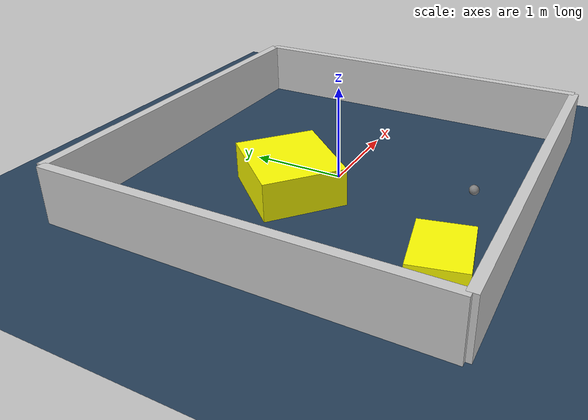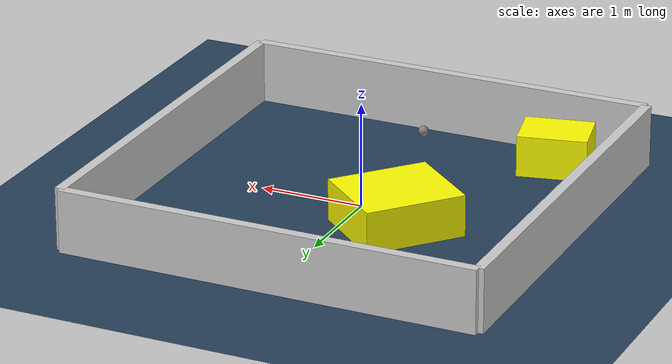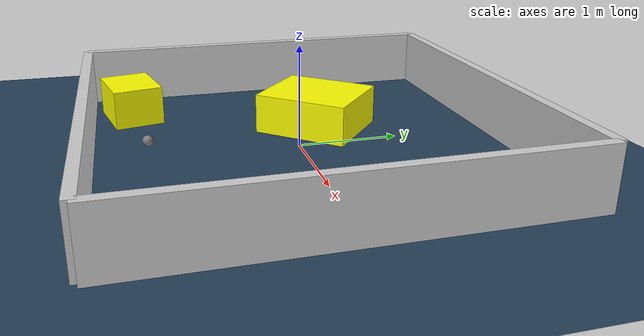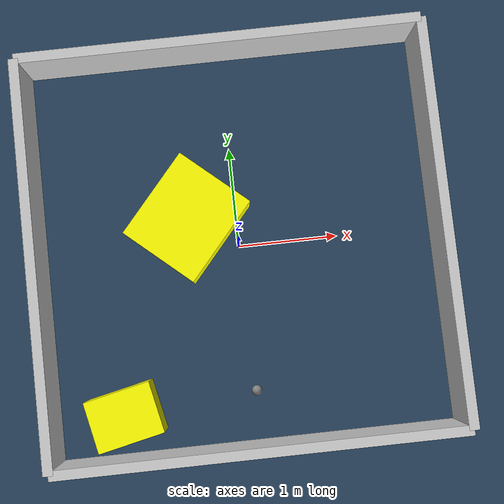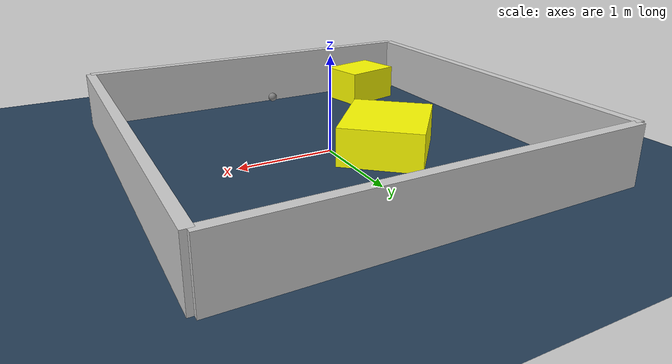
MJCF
<?xml version="1.0" ?>
<mujoco model="generated_environment">
  <option timestep="0.01" integrator="RK4" cone="elliptic"/>
  <default>
    <geom density="1"/>
  </default>
  <asset>
    <texture builtin="gradient" height="3072" rgb1="0.3 0.5 0.7" rgb2="0 0 0" type="skybox" width="512"/>
    <texture builtin="checker" height="300" mark="edge" markrgb="0.8 0.8 0.8" name="groundplane" rgb1="0.2 0.3 0.4" rgb2="0.1 0.2 0.3" type="2d" width="300"/>
    <material name="groundplane" reflectance="0.2" texrepeat="5 5" texture="groundplane" texuniform="true"/>
    <material name="robot" rgba="0.0 1.0 0.0 1"/>
  </asset>
  <worldbody>
    <light dir="0 0 -1" directional="true" pos="0 0 1.5"/>
    <geom condim="4" friction="1.0 0.005 0.001" material="groundplane" name="floor" size="0 0 0.05" type="plane"/>
    <body name="walls">
      <geom name="wall_1" condim="4" pos="-2.0 0.0 0.3" rgba="0.800000011920929 0.800000011920929 0.800000011920929 1.0" size="0.05 2.0 0.3" type="box"/>
      <geom name="wall_2" condim="4" pos="2.0 0.0 0.3" rgba="0.800000011920929 0.800000011920929 0.800000011920929 1.0" size="0.05 2.0 0.3" type="box"/>
      <geom name="wall_3" condim="4" pos="0.0 -2.0 0.3" rgba="0.800000011920929 0.800000011920929 0.800000011920929 1.0" size="2.0 0.05 0.3" type="box"/>
      <geom name="wall_4" condim="4" pos="0.0 2.0 0.3" rgba="0.800000011920929 0.800000011920929 0.800000011920929 1.0" size="2.0 0.05 0.3" type="box"/>
    </body>
    <body name="robot">
      <joint name="joint_x" type="slide" pos="0 0 0" axis="1 0 0"/>
      <joint name="joint_y" type="slide" pos="0 0 0" axis="0 1 0"/>
      <geom name="robot" type="sphere" pos="0.024304909301249955 -1.449417000995529 0.2" size="0.05" mass="5." friction="1.0 0.005 0.0001" condim="4"/>
      <site name="sensor_ball"/>
    </body>
    <body name="obstacle_1_movable">
      <geom name="obstacle_1_movable" condim="4" pos="-0.48522580498487944 0.30612621435363696 0.2" euler="0 0 49.16726559971454" friction="1.0 0.005 0.001" rgba="1 1 0 1" size="0.4846890568470311 0.4221555716494876 0.2" type="box" mass="0.1"/>
      <joint type="free"/>
    </body>
    <body name="obstacle_2_movable">
      <geom name="obstacle_2_movable" condim="4" pos="-1.2780436844181917 -1.5594587608341661 0.2" euler="0 0 192.3438374166072" friction="1.0 0.005 0.001" rgba="1 1 0 1" size="0.331326154319074 0.2548858065835766 0.2" type="box" mass="0.1"/>
      <joint type="free"/>
    </body>
  </worldbody>
  <actuator>
    <motor name="actuator_x" joint="joint_x" gear="1" ctrlrange="-1 1"/>
    <motor name="actuator_y" joint="joint_y" gear="1" ctrlrange="-1 1"/>
  </actuator>
</mujoco>
